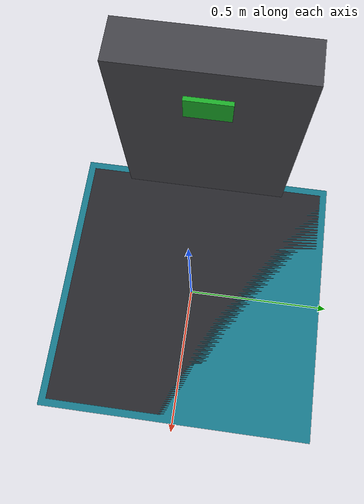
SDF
<?xml version="1.0" ?>
<sdf version="1.6">
  <model name="charging_dock">
    <static>true</static>

    <link name="dock_link">
      <!-- Floor pad: VISUAL ONLY (drivable, no lip) -->
      <visual name="pad_vis">
        <pose>0 0 0.005 0 0 0</pose>
        <geometry><box><size>0.9 0.9 0.01</size></box></geometry>
        <material>
          <ambient>0.10 0.10 0.12 1</ambient><diffuse>0.14 0.14 0.16 1</diffuse>
          <specular>0.10 0.10 0.12 1</specular>
        </material>
      </visual>
      <!-- Painted safety border (emissive cyan) -->
      <visual name="border_vis">
        <pose>0 0 0.006 0 0 0</pose>
        <geometry><box><size>0.95 0.95 0.008</size></box></geometry>
        <material>
          <ambient>0.05 0.30 0.35 1</ambient><diffuse>0.08 0.45 0.52 1</diffuse>
          <emissive>0.08 0.40 0.48 1</emissive>
        </material>
      </visual>

      <!-- Back charger unit: has collision -->
      <collision name="back_col">
        <pose>-0.50 0 0.35 0 0 0</pose>
        <geometry><box><size>0.15 0.6 0.7</size></box></geometry>
      </collision>
      <visual name="back_vis">
        <pose>-0.50 0 0.35 0 0 0</pose>
        <geometry><box><size>0.15 0.6 0.7</size></box></geometry>
        <material><ambient>0.18 0.18 0.20 1</ambient><diffuse>0.25 0.25 0.27 1</diffuse><specular>0.30 0.30 0.32 1</specular></material>
      </visual>
      <!-- Status indicator (emissive green = available) -->
      <visual name="status_vis">
        <pose>-0.42 0 0.55 0 0 0</pose>
        <geometry><box><size>0.02 0.15 0.08</size></box></geometry>
        <material>
          <ambient>0.05 0.40 0.10 1</ambient><diffuse>0.10 0.65 0.15 1</diffuse>
          <emissive>0.10 0.60 0.15 1</emissive>
        </material>
      </visual>
    </link>

    <!-- FUTURE docking goal: robot centred on pad, facing the back unit (-X) -->
    <frame name="dock_frame">
      <pose>0 0 0 0 0 3.14159</pose>
    </frame>
  </model>
</sdf>
